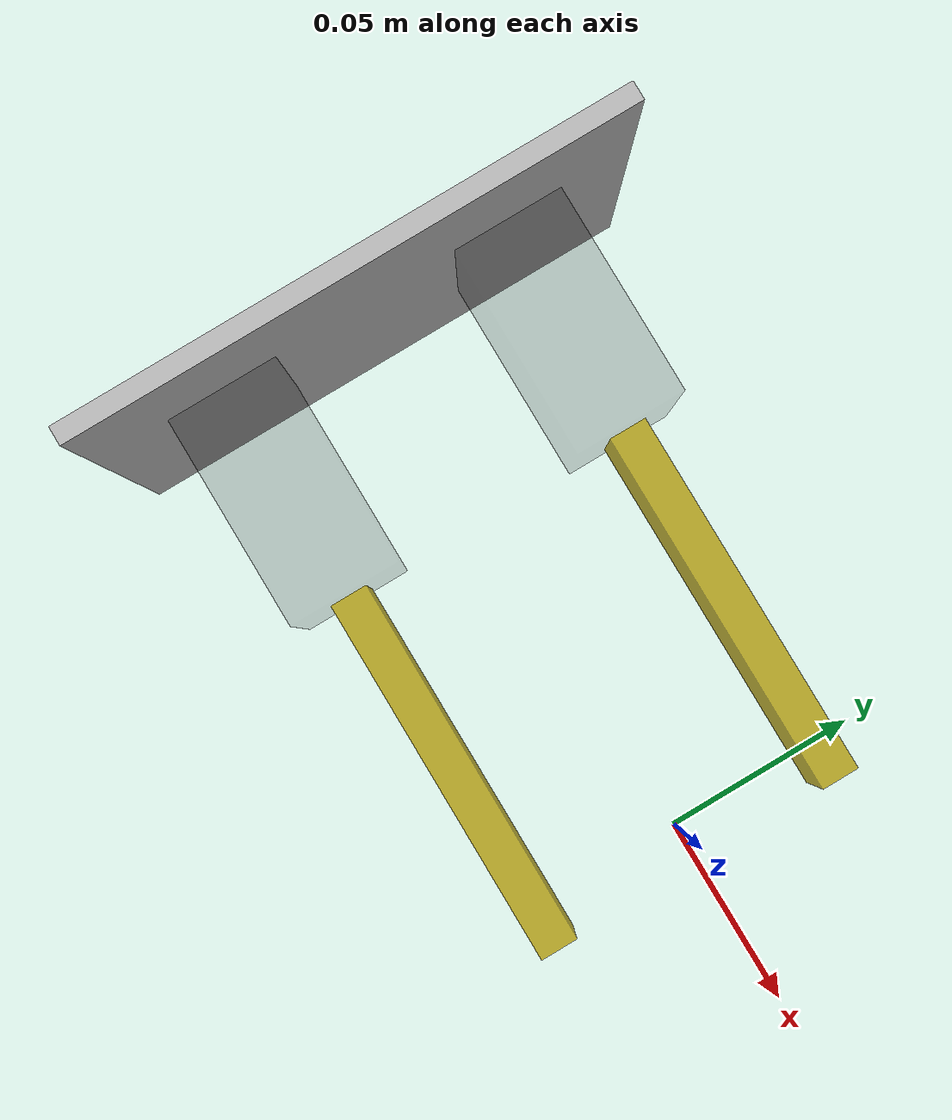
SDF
<?xml version="1.0"?>
<sdf version="1.4">
  <model name="gripper">
    <static>false</static>
    <link name="link_axis_x">
      <pose>0 0 0 0 0 0</pose>
    </link>
    <link name="link_axis_y">
      <pose>0 0 0 0 0 0</pose>
    </link>

    <joint name="axis_x" type="prismatic">
      <child>link_axis_y</child>
      <parent>link_axis_x</parent>
      <pose>0 0 0 0 0 0</pose>
      <axis>
        <limit>
          <lower>-0.2</lower>
          <upper>0.2</upper>
        </limit>
        <xyz>1 0 0</xyz>
      </axis>
    </joint>
    <joint name="axis_y" type="prismatic">
      <child>link</child>
      <parent>link_axis_y</parent>
      <pose>0 0 0 0 0 0</pose>
      <axis>
        <limit>
          <lower>-0.3</lower>
          <upper>0.2</upper>
        </limit>
        <xyz>0 1 0</xyz>
      </axis>
    </joint>

    <link name="link">
      <pose>0 0 0 0 0 0</pose>
      <!-- Origin is where the puck should be gripped -->
      <visual name="back-visual">
        <pose>-0.15 0 0 0 0 0</pose>
        <geometry>
          <box>
            <size>0.005 0.15 0.1</size>
          </box>
        </geometry>
        <material>
          <script>
            <uri>model://logistics_league_field/materials/scripts/</uri>
            <uri>model://logistics_league_field/materials/textures/</uri>
            <name>Logistics_League_Field/Image</name>
          </script>
        </material>
        <cast_shadows>false</cast_shadows>
      </visual>
      <visual name="left-servo-visual">
        <pose>-0.12 0.04 0 0 0 0</pose>
        <geometry>
          <box>
            <size>0.06 0.03 0.04</size>
          </box>
        </geometry>
        <material>
          <ambient>0.0 0.0 0.0 0.1</ambient>
          <diffuse>0.0 0.0 0.0 0.11</diffuse>
        </material>
        <cast_shadows>false</cast_shadows>
      </visual>
      <visual name="right-servo-visual">
        <pose>-0.12 -0.04 0 0 0 0</pose>
        <geometry>
          <box>
            <size>0.06 0.03 0.04</size>
          </box>
        </geometry>
        <material>
          <ambient>0.0 0.0 0.0 0.1</ambient>
          <diffuse>0.0 0.0 0.0 0.11</diffuse>
        </material>
        <cast_shadows>false</cast_shadows>
      </visual>
      <visual name="left-finger-visual">
        <pose>-0.04 -0.04 0 0 0 0</pose>
        <geometry>
          <box>
            <size>0.1 0.01 0.02</size>
          </box>
        </geometry>
        <material>
          <ambient>0.7 0.6 0.0 0.8</ambient>
          <diffuse>0.7 0.6 0.0 0.8</diffuse>
        </material>
        <cast_shadows>false</cast_shadows>
      </visual>
      <visual name="right-finger-visual">
        <pose>-0.04 0.04 0 0 0 0</pose>
        <geometry>
          <box>
            <size>0.1 0.01 0.02</size>
          </box>
        </geometry>
        <material>
          <ambient>0.7 0.6 0.0 0.8</ambient>
          <diffuse>0.7 0.6 0.0 0.8</diffuse>
        </material>
        <cast_shadows>false</cast_shadows>
      </visual>
    </link>
    <plugin name="Gripper" filename="libgripper.so" />
  </model>
</sdf>
